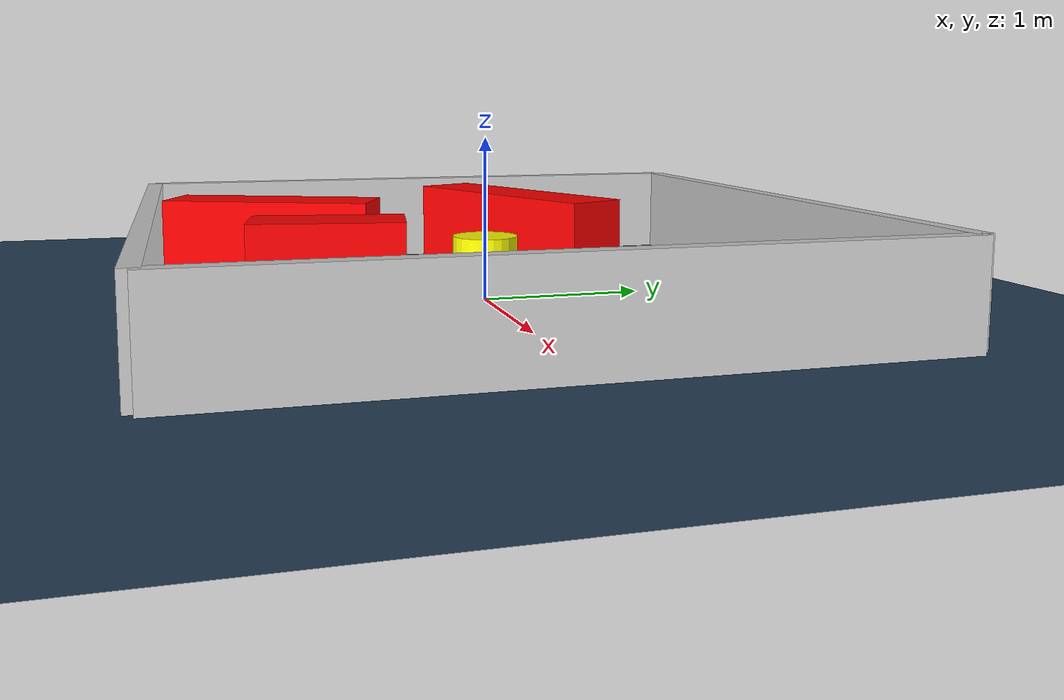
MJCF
<?xml version="1.0" ?>
<mujoco model="generated_environment">
  <option timestep="0.01" integrator="RK4" cone="elliptic"/>
  <default>
    <geom density="1"/>
  </default>
  <asset>
    <texture builtin="gradient" height="3072" rgb1="0.3 0.5 0.7" rgb2="0 0 0" type="skybox" width="512"/>
    <texture builtin="checker" height="300" mark="edge" markrgb="0.8 0.8 0.8" name="groundplane" rgb1="0.2 0.3 0.4" rgb2="0.1 0.2 0.3" type="2d" width="300"/>
    <material name="groundplane" reflectance="0.2" texrepeat="5 5" texture="groundplane" texuniform="true"/>
    <material name="robot" rgba="0.0 1.0 0.0 1"/>
  </asset>
  <worldbody>
    <light dir="0 0 -1" directional="true" pos="0 0 1.5"/>
    <geom condim="4" friction="1.0 0.005 0.001" material="groundplane" name="floor" size="0 0 0.05" type="plane"/>
    <body name="walls">
      <geom name="wall_1" condim="4" pos="-2.0 0.0 0.3" rgba="0.800000011920929 0.800000011920929 0.800000011920929 1.0" size="0.05 2.0 0.3" type="box"/>
      <geom name="wall_2" condim="4" pos="2.0 0.0 0.3" rgba="0.800000011920929 0.800000011920929 0.800000011920929 1.0" size="0.05 2.0 0.3" type="box"/>
      <geom name="wall_3" condim="4" pos="0.0 -2.0 0.3" rgba="0.800000011920929 0.800000011920929 0.800000011920929 1.0" size="2.0 0.05 0.3" type="box"/>
      <geom name="wall_4" condim="4" pos="0.0 2.0 0.3" rgba="0.800000011920929 0.800000011920929 0.800000011920929 1.0" size="2.0 0.05 0.3" type="box"/>
    </body>
    <body name="robot">
      <joint name="joint_x" type="slide" pos="0 0 0" axis="1 0 0"/>
      <joint name="joint_y" type="slide" pos="0 0 0" axis="0 1 0"/>
      <geom name="robot" type="sphere" pos="0.3 0.0 0.2" size="0.05" mass="5." friction="1.0 0.005 0.0001" condim="4" rgba="0.5 0.5 0.5 1.0"/>
      <site name="sensor_ball"/>
    </body>
    <body name="obstacle_movable_1">
      <geom name="obstacle_movable_1" condim="4" pos="0.0 0.0 0.2" euler="0 0 0.0" friction="1.0 0.005 0.001" rgba="1.0 1.0 0.0 1.0" size="0.2 0.2 0.0" type="cylinder" mass="0.1"/>
      <joint type="free"/>
    </body>
    <body name="obstacle_2_static">
      <geom name="obstacle_2_static" condim="4" pos="-0.605997950624056 -1.2453417947154592 0.3" euler="0 0 67.73519359736316" friction="1.0 0.005 0.001" rgba="1 0 0 1" size="0.6549506329521922 0.2 0.3" type="box"/>
    </body>
    <body name="obstacle_3_static">
      <geom name="obstacle_3_static" condim="4" pos="0.5643483894667951 -1.0386276682062037 0.3" euler="0 0 80.98357228149028" friction="1.0 0.005 0.001" rgba="1 0 0 1" size="0.42336868246911374 0.2 0.3" type="box"/>
    </body>
    <body name="obstacle_4_static">
      <geom name="obstacle_4_static" condim="4" pos="-0.6404994805463539 0.38382973469937043 0.3" euler="0 0 24.315095373855712" friction="1.0 0.005 0.001" rgba="1 0 0 1" size="0.7864892634696583 0.2 0.3" type="box"/>
    </body>
  </worldbody>
  <actuator>
    <motor name="actuator_x" joint="joint_x" gear="1" ctrlrange="-1 1"/>
    <motor name="actuator_y" joint="joint_y" gear="1" ctrlrange="-1 1"/>
  </actuator>
</mujoco>
